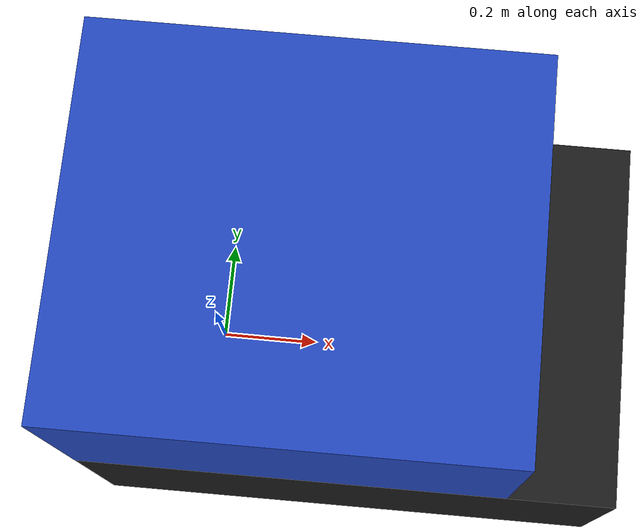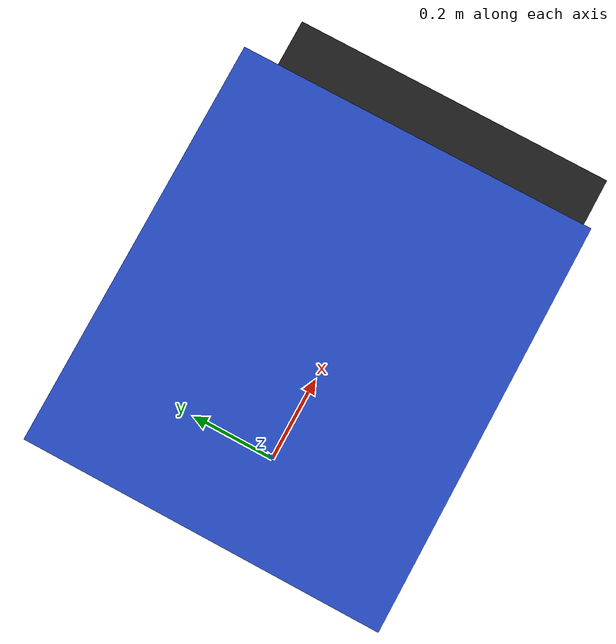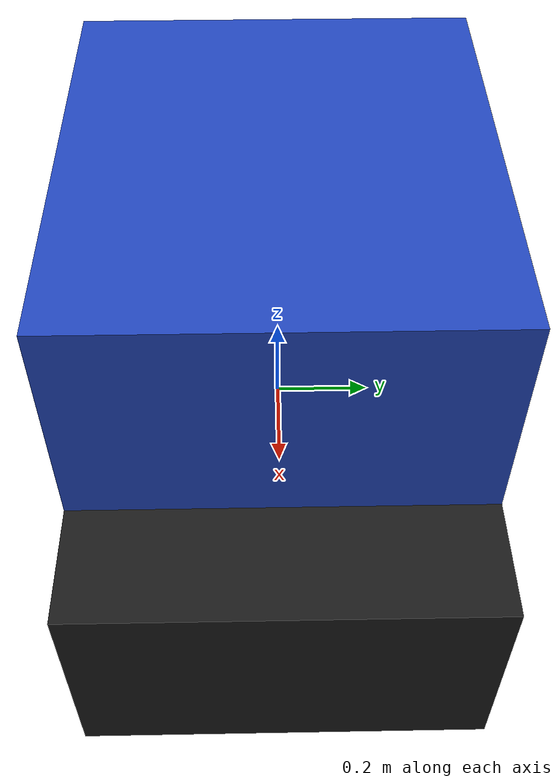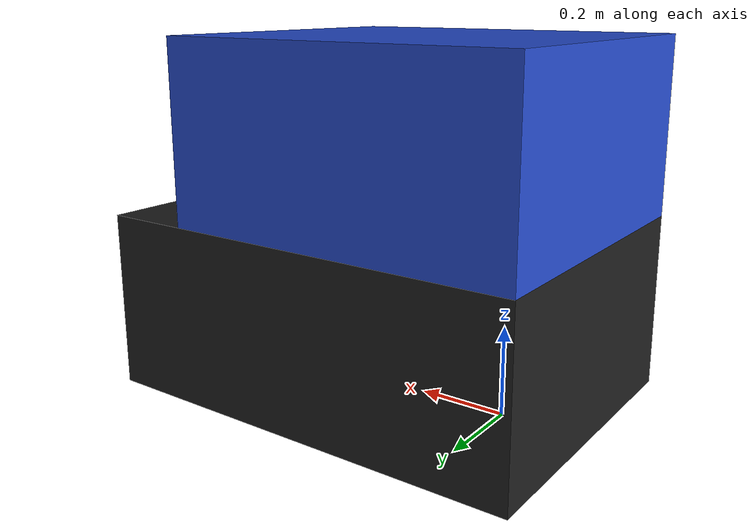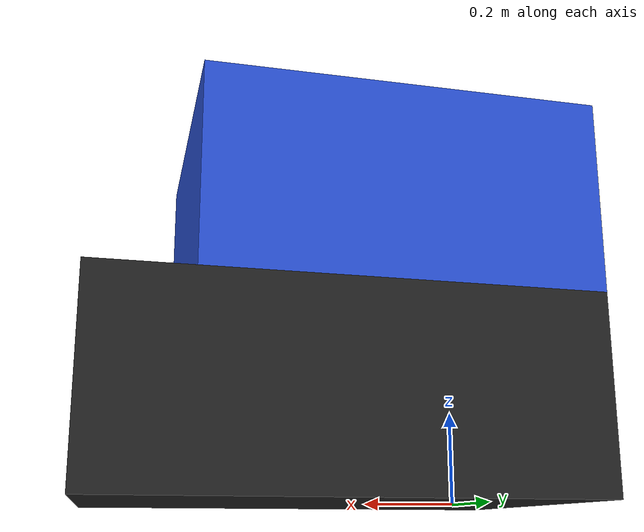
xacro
<?xml version="1.0"?>

<robot xmlns:xacro="http://www.ros.org/wiki/xacro">

    <!-- BASE LINK -->
    <link name="base_link"></link>

   <!-- BASE FOOTPRINT -->
    <joint name="base_footprint_joint" type="fixed">
        <parent link="base_link"/>
        <child link="base_footprint"/>
        <origin xyz="0.0 0.0 0.0" rpy="0.0 0.0 0.0"/>
    </joint>

    <link name="base_footprint"></link>

    <!-- CHASSIS LINK -->
    <joint name="chassis_joint" type="fixed">
        <parent link="base_link"/>
        <child link="chassis"/>
        <origin xyz="-0.2 0.0 0.0" rpy="0.0 0.0 0.0"/>
    </joint>

    <link name="chassis">
        <visual>
            <origin xyz="0.5 0.0 0.2" rpy="0.0 0.0 0.0"/>
            <geometry>
                <box size="1.0 0.7 0.4"/>
            </geometry>
            <material name="carbon_black"/>
        </visual>
        <collision>
            <origin xyz="0.5 0.0 0.2" rpy="0.0 0.0 0.0"/>
            <geometry>
                <box size="1.0 0.7 0.4"/>
            </geometry>
        </collision>
        <xacro:inertial_box mass="2" x="1" y="0.7" z="0.4">
            <origin xyz="0.5 0.0 0.2" rpy="0.0 0.0 0.0"/>
        </xacro:inertial_box>
    </link>

    <!-- ITEM BASKET LINK -->

    <joint name="basket_joint" type="fixed">
        <parent link="chassis"/>
        <child link="basket"/>
        <origin xyz="0.0 0.0 0.4"/>
    </joint>

    <link name="basket">
        <visual>
            <origin xyz="0.4 0.0 0.2"/>
            <geometry>
                <box size="0.8 0.7 0.4"/>
            </geometry>
            <material name="deep_sci_fi_blue"/>
        </visual>
        <collision>
            <origin xyz="0.35 0.0 0.2"/>
            <geometry>
                <box size="0.8 0.7 0.4"/>
            </geometry>
        </collision>
        <xacro:inertial_box mass="3" x="0.7" y="0.7" z="0.6">
            <origin xyz="0.35 0.0 0.3"/>
        </xacro:inertial_box>
    </link>

</robot>
